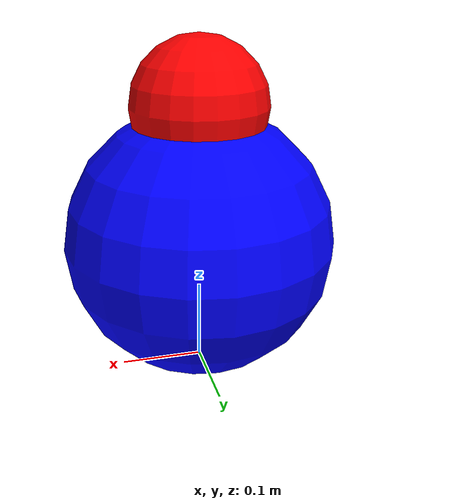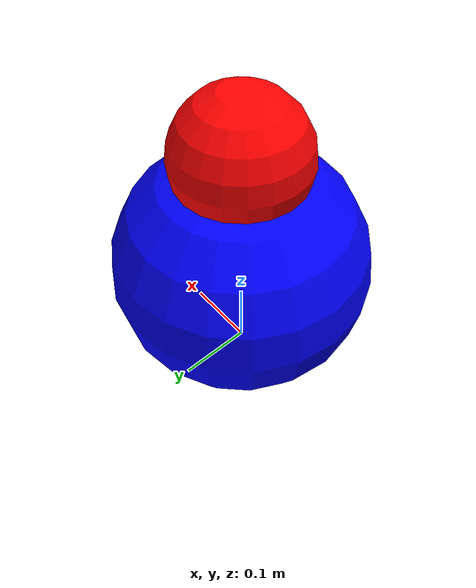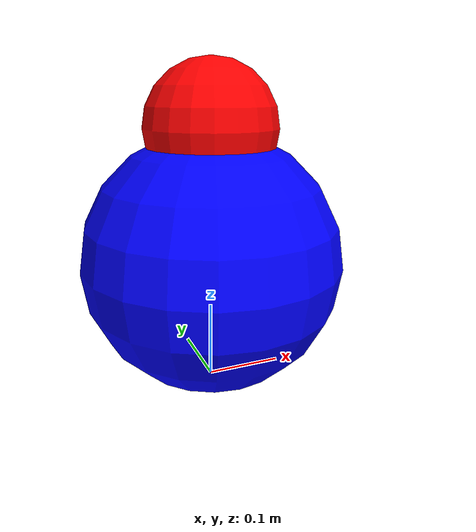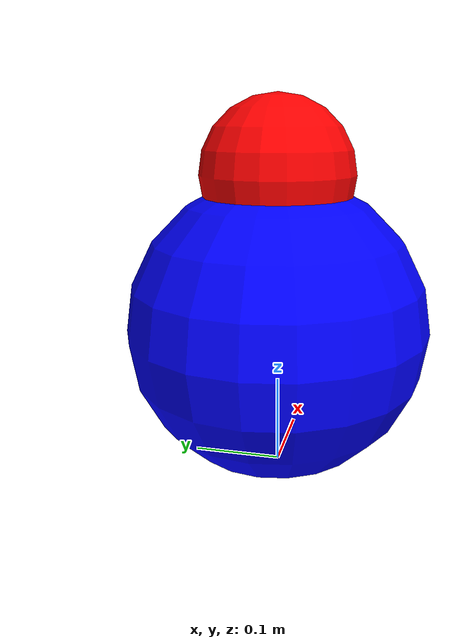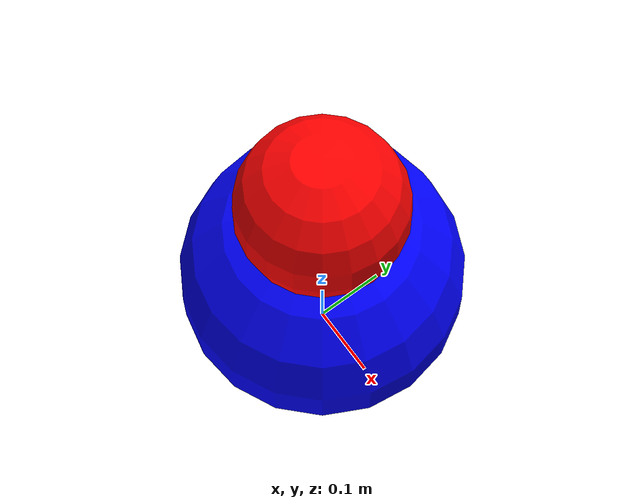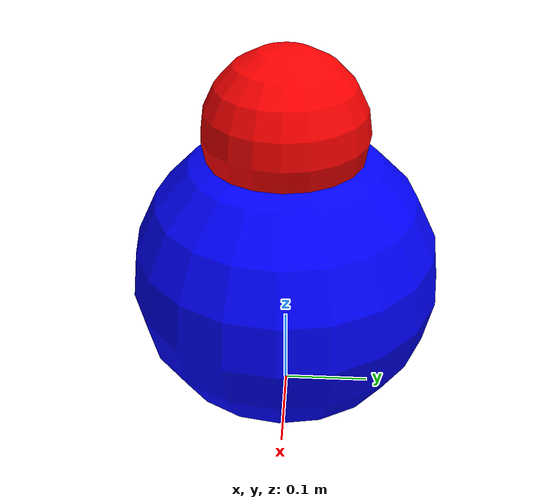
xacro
<?xml version="1.0"?>
<robot xmlns:xacro="http://www.ros.org/wiki/xacro" name="ORBIT">

    <xacro:property name="sphere_diameter" value="0.33"/>
    <xacro:property name="head_diameter" value="${sphere_diameter / 2}"/>
    <xacro:property name="mass" value="10"/>

    <!-- From base_footprint -->
    <xacro:property name="head_revolution_height" value="${sphere_diameter / 2}"/>
    <xacro:property name="sphere_imu_height" value="${sphere_diameter / 2}"/>

    <!-- From head_link -->
    <xacro:property name="head_imu_height" value="0.089"/>
    <xacro:property name="lidar_height" value="0.119"/>

    <!-- Fottprint, bottom of the sphere, contact point with the terrain -->
    <link name="base_footprint">
        <collision>
            <geometry>
                <cylinder length="${sphere_diameter + lidar_height}" radius="${sphere_diameter / 2}"/>
            </geometry>
        </collision>
    </link>

    <!-- Center of the sphere, revolution pivit point for the head -->
    <link name="base_link">
        <visual>
            <geometry>
                <sphere radius="${sphere_diameter / 2}"/>
            </geometry>
            <material name="blue">
                <color rgba="0 0 1 1"/>
            </material>

        </visual>
    </link>

    <!-- Servo link, revolution for the head -->
    <link name="servo_link"/>

    <!-- Head base, point where the middle of the head "touches" the sphere -->
    <link name="head_link">
        <visual>
            <geometry>
                <sphere radius="${sphere_diameter / 4}"/>
            </geometry>
            <material name="red">
                <color rgba="1 0 0 1"/>
            </material>

        </visual>
    </link>

    <!-- IMU in the sphere -->
    <link name="sphere_imu"/>

    <!-- Lidar -->
    <link name="laser"/>

    <!-- IMU in the head -->
    <link name="head_imu"/>

    <!-- Revolution center point for the head -->
    <joint name="base_joint" type="fixed">
        <parent link="base_footprint"/>
        <child  link="base_link"/>
        <origin xyz="0 0 ${head_revolution_height}" rpy="0 0 0"/>
    </joint>

    <!-- Fixed mount sphere IMU -->
    <joint name="sphere_imu_joint" type="fixed">
        <parent link="base_footprint"/>
        <child  link="sphere_imu"/>
        <origin xyz="0 0 ${sphere_imu_height}" rpy="0 0 0"/>
    </joint>

    <!-- Revolute joint of the sphere: allows pitching only -->
    <joint name="servo_joint" type="revolute">
        <parent link="base_link"/>
        <child  link="servo_link"/>

        <!-- Offset joint pivot radius above base center -->
        <origin xyz="0 0 0" rpy="0 0 0"/>
        <!-- Axis along Y for forward/back tilt -->
        <axis  xyz="0 1 0"/>
        <!-- Limit motion to ±45° -->
        <limit lower="${-45.0 * pi / 180.0}" upper="${45.0 * pi / 180.0}" effort="1.0" velocity="1.0"/>
    </joint>

    <!-- Head link: Lenght of the servo link -->
    <joint name="head_joint" type="fixed">
        <parent link="servo_link"/>
        <child  link="head_link"/>

        <origin xyz="0 0 ${sphere_diameter / 2}" rpy="0 0 0"/>
    </joint>

    <!-- Fixed mount lidar_height above head for lidar -->
    <joint name="lidar_joint" type="fixed">
        <parent link="head_link"/>
        <child  link="laser"/>
        <origin xyz="0 0 ${lidar_height}" rpy="0 0 0"/>
    </joint>

    <!-- Fixed mount head_imu_height above head for imu -->
    <joint name="head_imu_joint" type="fixed">
        <parent link="head_link"/>
        <child  link="head_imu"/>
        <origin xyz="0 0 ${head_imu_height}" rpy="0 0 0"/>
    </joint>
</robot>
